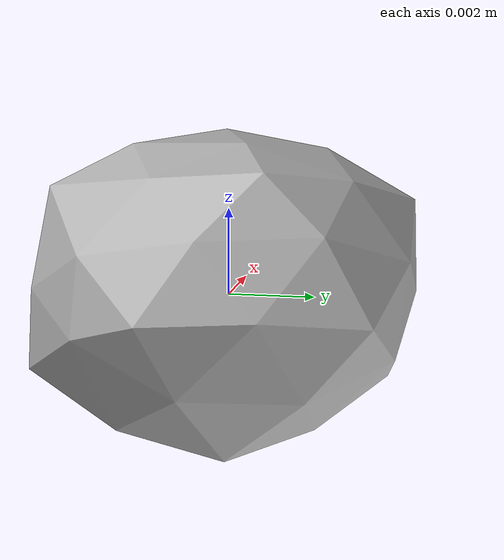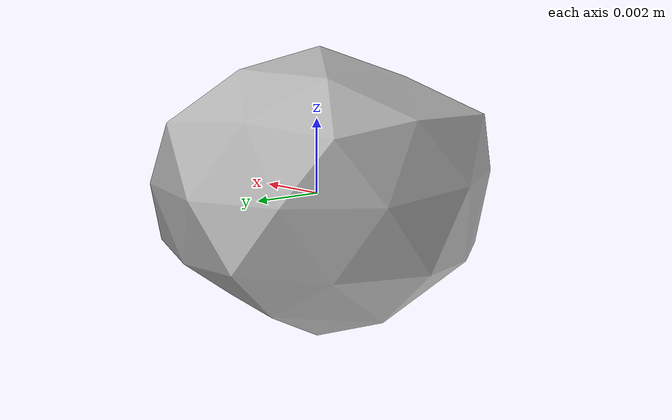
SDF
<?xml version="1.0" ?>
<sdf version="1.6">

  <model name="stone">
      <pose>0 0 0  0 0 0</pose>
      <static>false</static>
      <link name="stone">

        <inertial>
          <mass>10</mass>
        </inertial>

        <collision name="collision">
          <geometry>
            <box>
              <size>0.01 0.01 0.01</size>
            </box>
          </geometry>
        </collision>

        <visual name="visual">
          <geometry>
            <mesh>
              <uri>model://landscape/stone/meshes/stone.dae</uri>
            </mesh>
          </geometry>
          <material>
            <script>
              <uri>model://landscape/stone/materials/scripts/stone.material</uri>
              <name>stone</name>
            </script>
          </material>
        </visual>
      </link>
    </model>
</sdf>
